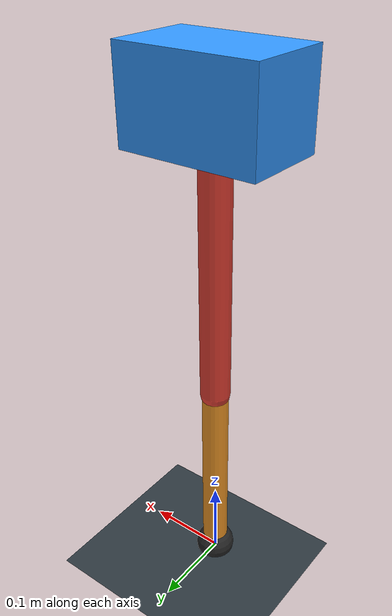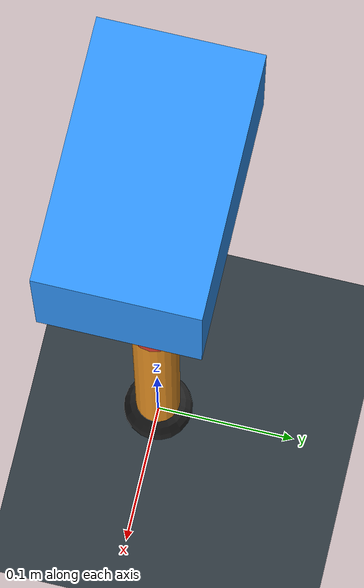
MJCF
<mujoco model="single_axis_two_bar">
  <compiler angle="radian" inertiafromgeom="true"/>
  <option timestep="0.001" integrator="implicitfast" gravity="0 0 -9.81"/>
  <default>
    <joint damping="0.08"/>
    <geom friction="1.2 0.01 0.0001" condim="3"/>
  </default>
  <worldbody>
    <geom name="floor" type="plane" size="5 5 0.1" rgba="0.18 0.22 0.25 1"/>
    <body name="carriage" pos="0 0 0.5983195982498722">
      <joint name="pole_slide" type="slide" axis="0 0 1"/>
      <geom name="payload" type="box" size="0.08 0.05 0.05" mass="2.4935460732656245" rgba="0.2 0.6 1 1"/>
      <body name="thigh" pos="0 0 0">
        <joint name="hip" type="hinge" axis="0 1 0"/>
        <geom name="thigh_link" type="capsule" fromto="0 0 0 0 0 -0.3390571805925738" size="0.018" mass="0.24158272141756562" rgba="0.9 0.25 0.2 1"/>
        <body name="shank" pos="0 0 -0.3390571805925738">
          <joint name="knee" type="hinge" axis="0 1 0"/>
          <geom name="shank_link" type="capsule" fromto="0 0 0 0 0 -0.25199395162378935" size="0.016" mass="0.17954902033823725" rgba="0.95 0.6 0.15 1"/>
          <geom name="foot" type="sphere" pos="0 0 -0.25199395162378935" size="0.025" mass="0.03" rgba="0.15 0.15 0.15 1"/>
          <site name="toe" pos="0 0 -0.25199395162378935" size="0.008"/>
        </body>
      </body>
    </body>
  </worldbody>
  <actuator>
    <motor name="hip_motor" joint="hip" ctrlrange="-41.7921311158914 41.7921311158914"/>
    <motor name="knee_motor" joint="knee" ctrlrange="-103.51796234317877 103.51796234317877"/>
  </actuator>
</mujoco>
